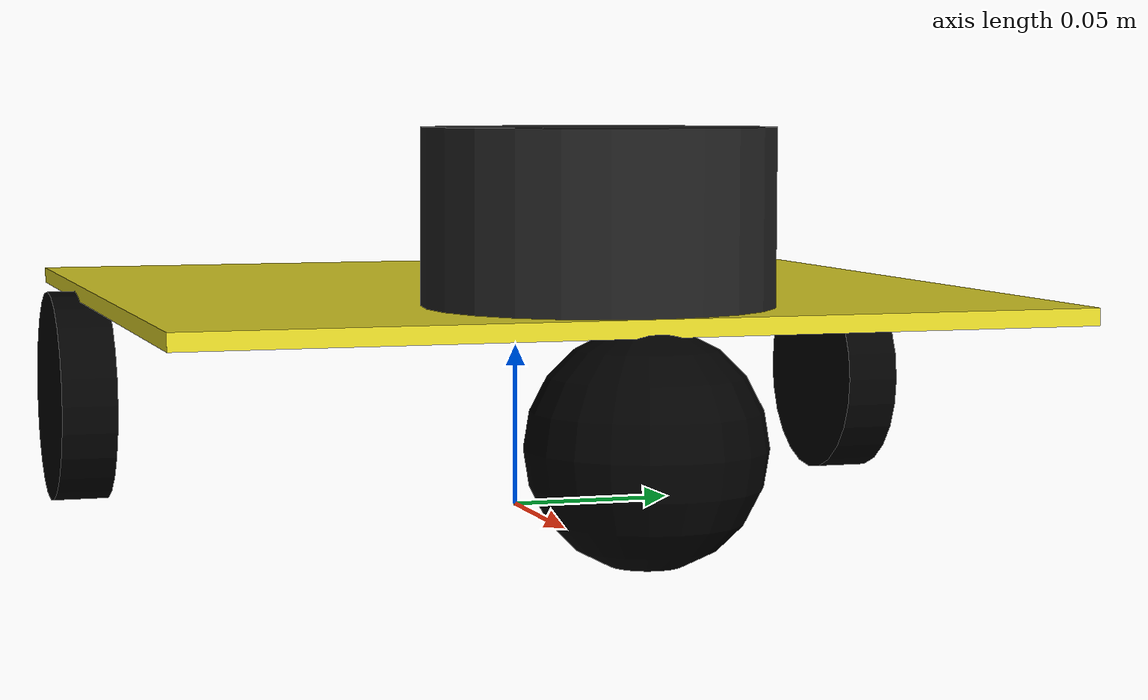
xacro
<?xml version="1.0"?>
<robot name="clean_car" xmlns:xacro="http://www.ros.org/wiki/xacro">

	<xacro:include filename="$(find clean_car_description)/urdf/clean_car_body.xacro" />
	<xacro:include filename="$(find clean_car_description)/urdf/rplidar.xacro" />
	<xacro:include filename="$(find clean_car_description)/urdf/imu.xacro" />
	<xacro:property name="rplidar_offset_x" value="0.08" />
	<xacro:property name="rplidar_offset_y" value="0" />
	<xacro:property name="rplidar_offset_z" value="0.0605" />

	<xacro:property name="imu_offset_x" value="0.0" />
	<xacro:property name="imu_offset_y" value="0.0" />
	<xacro:property name="imu_offset_z" value="0.0405" />

	<clean_car_body/>

	<!-- rplidar -->
	<joint name="rplidar_joint" type="fixed">
		<origin xyz="${rplidar_offset_x} ${rplidar_offset_y} ${rplidar_offset_z}" rpy="0 0 0" />
		<parent link="base_link"/>
		<child link="velodyne"/>
	</joint>
	<xacro:rplidar prefix="velodyne"/>

	<joint name="imu_joint" type="fixed">
		<origin xyz="${imu_offset_x} ${imu_offset_y} ${imu_offset_z}" rpy="0 0 0" />
		<parent link="base_link"/>
	<child link="imu_link"/>
	</joint>
	<xacro:imu prefix="imu"/>

</robot>

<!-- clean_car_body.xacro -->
<robot name="clean_car" xmlns:xacro="http://www.ros.org/wiki/xacro">

    <!-- Defining the colors used in this robot -->
    <material name="Black">
        <color rgba="0 0 0 1"/>
    </material>

    <material name="White">
        <color rgba="1 1 1 1"/>
    </material>

    <material name="Blue">
        <color rgba="0 0 1 1"/>
    </material>

    <material name="Red">
        <color rgba="1 0 0 1"/>
    </material>

    <!-- PROPERTY LIST -->
    <!--All units in m-kg-s-radians unit system -->
    <xacro:property name="M_PI" value="3.1415926535897931" />

    <!-- Main body length, width, height and mass -->
    <xacro:property name="base_mass"        value="0.5" />
    <xacro:property name="base_link_w" value="0.26"/>
    <xacro:property name="base_link_h" value="0.005"/>
    <xacro:property name="base_link_d" value="0.26"/>
    <xacro:property name="base_link_radius" value="0.13"/>
    <xacro:property name="motor_x" value="-0.05"/>

    <!-- Caster radius and mass -->
    <xacro:property name="caster_radius"          value="0.033" />
    <xacro:property name="caster_mass"            value="0.01" />
    <xacro:property name="caster_joint_origin_x"  value="-0.12" />

    <!-- Wheel radius, height and mass -->
    <xacro:property name="wheel_radius" value="0.033" />
    <xacro:property name="wheel_height" value="0.017" />
    <xacro:property name="wheel_mass"   value="0.1" />

    <!-- Macro for inertia matrix -->
    <xacro:macro name="sphere_inertial_matrix" params="m r">
        <inertial>
            <mass value="${m}" />
            <inertia ixx="${2*m*r*r/5}" ixy="0" ixz="0"
                iyy="${2*m*r*r/5}" iyz="0"
                izz="${2*m*r*r/5}" />
        </inertial>
    </xacro:macro>

    <xacro:macro name="cylinder_inertial_matrix" params="m r h">
        <inertial>
            <mass value="${m}" />
            <inertia ixx="${m*(3*r*r+h*h)/12}" ixy = "0" ixz = "0"
                iyy="${m*(3*r*r+h*h)/12}" iyz = "0"
                izz="${m*r*r/2}" />
        </inertial>
    </xacro:macro>

    <xacro:macro name="box_inertial_matrix" params="m w h d">
        <inertial>
            <mass value="${m}" />
            <inertia ixx="${m*(h*h+d*d)/12}" ixy = "0" ixz = "0"
                iyy="${m*(w*w+d*d)/12}" iyz = "0"
                izz="${m*(w*w+h*h)/12}" />
        </inertial>
    </xacro:macro>

    <!-- Macro for wheel joint -->
    <xacro:macro name="wheel" params="lr translateY">
        <!-- lr: left, right -->
        <link name="wheel_${lr}_link">
            <visual>
                <origin xyz="0 0 0" rpy="${M_PI/2} 0  0 " />
                <geometry>
                    <cylinder length="${wheel_height}" radius="${wheel_radius}" />
                </geometry>
                <material name="Black" />
            </visual>
            <collision>
                <origin xyz="0 0 0" rpy="${M_PI/2} 0 0 " />
                <geometry>
                    <cylinder length="${wheel_height}" radius="${wheel_radius}" />
                </geometry>
            </collision>
            <cylinder_inertial_matrix  m="${wheel_mass}" r="${wheel_radius}" h="${wheel_height}" />
        </link>

        <gazebo reference="wheel_${lr}_link">
            <material>Gazebo/Black</material>
        </gazebo>

        <joint name="base_to_wheel_${lr}_joint" type="continuous">
            <parent link="base_link"/>
            <child link="wheel_${lr}_link"/>
            <origin xyz="${motor_x} ${translateY * base_link_radius} 0" rpy="0 0 0" />
            <axis xyz="0 1 0" rpy="0  0" />
        </joint>

        <!-- Transmission is important to link the joints and the controller -->
        <transmission name="wheel_${lr}_joint_trans">
            <type>transmission_interface/SimpleTransmission</type>
            <joint name="base_to_wheel_${lr}_joint" />
            <actuator name="wheel_${lr}_joint_motor">
                <hardwareInterface>VelocityJointInterface</hardwareInterface>
                <mechanicalReduction>1</mechanicalReduction>
            </actuator>
        </transmission>
    </xacro:macro>

    <!-- Macro for caster joint -->
    <xacro:macro name="caster" params="fb translateX">
        <!-- fb: front, back -->
        <link name="${fb}_caster_link">
            <visual>
                <origin xyz="0 0 0 " rpy="0 0 0" />
                <geometry>
                    <sphere radius="${caster_radius}" />
                </geometry>
                <material name="Black" />
            </visual>
            <collision>
                <geometry>
                    <sphere radius="${caster_radius}" />
                </geometry>
                <origin xyz="0 0 0 " rpy="0 0 0" />
            </collision>
            <sphere_inertial_matrix  m="${caster_mass}" r="${caster_radius}" />
        </link>

        <gazebo reference="${fb}_caster_link">
            <material>Gazebo/Black</material>
        </gazebo>

        <joint name="base_to_${fb}_caster_joint" type="fixed">
            <parent link="base_link"/>
            <child link="${fb}_caster_link"/>
            <origin xyz="${translateX*caster_joint_origin_x} 0 0" rpy="0 0 0"/>
        </joint>
    </xacro:macro>

    <!-- BASE-FOOTPRINT -->
    <!-- base_footprint is a fictitious link(frame) that is on the ground right below base_link origin -->
    <xacro:macro name="clean_car_body">
        <link name="base_footprint">
            <visual>
                <origin xyz="0 0 0" rpy="0 0 0" />
                <geometry>
                    <box size="0.001 0.001 0.001" />
                </geometry>
            </visual>
        </link>

        <joint name="base_footprint_joint" type="fixed">
            <origin xyz="0 0 ${wheel_radius}" rpy="0 0 0" />
            <parent link="base_footprint"/>
            <child link="base_link" />
        </joint>

        <!-- BASE-LINK -->
        <!--Actual body/chassis of the robot-->
        <link name="base_link">
            <box_inertial_matrix  m="${base_mass}" w="${base_link_w}" h="${base_link_h}" d= "${base_link_d}" />
            <visual>
                <origin xyz=" 0 0 ${wheel_radius}" rpy="0 0 0" />
                <geometry>
                    <box size="${base_link_w} ${base_link_d} ${base_link_h}" />
                </geometry>
                <material name="yellow" />
            </visual>

            <collision>
                <origin xyz="0 0 ${2 * base_link_radius}" rpy="0 0 0" />
                <geometry>
                    <box size="${base_link_w} ${base_link_d} ${base_link_h}" />
                </geometry>
            </collision>
        </link>
        <gazebo reference="base_link">
            <material>Gazebo/Blue</material>
        </gazebo>

        <!-- Wheel Definitions -->
        <wheel lr="right"  translateY="1" />
        <wheel lr="left"  translateY="-1" />

        <!-- Casters Definitions -->
        <caster fb="front"  translateX="-1" />

        <!-- controller -->
        <gazebo>
            <plugin name="differential_drive_controller" filename="libgazebo_ros_diff_drive.so">
                <rosDebugLevel>Debug</rosDebugLevel>
                <publishWheelTF>True</publishWheelTF>
                <robotNamespace>/</robotNamespace>
                <publishTf>1</publishTf>
                <publishWheelJointState>true</publishWheelJointState>
                <alwaysOn>true</alwaysOn>
                <updateRate>100.0</updateRate>
                <legacyMode>true</legacyMode>
                <leftJoint>base_to_wheel_right_joint</leftJoint>
                <rightJoint>base_to_wheel_left_joint</rightJoint>
                <wheelSeparation>${base_link_w*2}</wheelSeparation>
                <wheelDiameter>${2*wheel_radius}</wheelDiameter>
                <publishOdomTF>false</publishOdomTF>
                <broadcastTF>1</broadcastTF>
                <wheelTorque>30</wheelTorque>
                <wheelAcceleration>1.8</wheelAcceleration>
                <commandTopic>cmd_vel</commandTopic>
                <odometryFrame>odom</odometryFrame>
                <odometryTopic>odom</odometryTopic>
                <robotBaseFrame>base_footprint</robotBaseFrame>
            </plugin>
        </gazebo>

    </xacro:macro>
</robot>

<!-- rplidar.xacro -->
<robot xmlns:xacro="http://www.ros.org/wiki/xacro" name="velodyne">

    <xacro:macro name="rplidar" params="prefix:=laser">
        <!-- Create laser reference frame -->
        <link name="${prefix}">
            <inertial>
                <mass value="0.1" />
                <origin xyz="0 0 0" />
                <inertia ixx="0.01" ixy="0.0" ixz="0.0"
                         iyy="0.01" iyz="0.0"
                         izz="0.01" />
            </inertial>

            <visual>
                <origin xyz=" 0 0 0 " rpy="0 0 0" />
                <geometry>
                    <cylinder length="0.05" radius="0.05"/>
                </geometry>
                <material name="black"/>
            </visual>

            <collision>
                <origin xyz="0.0 0.0 0.0" rpy="0 0 0" />
                <geometry>
                    <cylinder length="0.06" radius="0.05"/>
                </geometry>
            </collision>
        </link>
        <gazebo reference="${prefix}">
            <material>Gazebo/<color rgba="1.0 0.0 0.0 0.0"/>
            </material>
        </gazebo>

        <gazebo reference="${prefix}">
            <sensor type="ray" name="rplidar">
                <pose>0 0 0 0 0 0</pose>
                <visualize>false</visualize>
                <update_rate>30</update_rate>
                <ray>
                    <scan>
                      <horizontal>
                        <samples>360</samples>
                        <resolution>1</resolution>
                        <min_angle>-3</min_angle>
                        <max_angle>3</max_angle>
                      </horizontal>
                    </scan>
                    <range>
                      <min>0.10</min>
                      <max>6.0</max>
                      <resolution>0.01</resolution>
                    </range>
                    <noise>
                      <type>gaussian</type>
                      <mean>0.0</mean>
                      <stddev>0.01</stddev>
                    </noise>
                </ray>
                <plugin name="gazebo_rplidar" filename="libgazebo_ros_laser.so">
                    <topicName>/scan</topicName>
                    <frameName>laser_link</frameName>
                </plugin>
            </sensor>
        </gazebo>

    </xacro:macro>
</robot>

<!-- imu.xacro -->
<robot xmlns:xacro="http://www.ros.org/wiki/xacro" name="imu">

    <xacro:macro name="imu" params="prefix:=imu">

        <link name="${prefix}_link">

            <visual>
                <origin xyz=" 0 0 0 " rpy="0 0 0" />
                <geometry>
                    <box size="0.01 0.01 0.01"/>
                </geometry>
                <material name="black"/>
            </visual>

        </link>
        <gazebo reference="${prefix}_link">
            <material>Gazebo/<color rgba="0.0 0.0 1.0 0.0"/>
            </material>
        </gazebo>

        <gazebo reference="${prefix}_link">
            <gravity>true</gravity>
            <sensor name="imu_sensor" type="imu">
            <always_on>true</always_on>
            <update_rate>100</update_rate>
            <visualize>true</visualize>
            <topic>__default_topic__</topic>
            <plugin filename="libgazebo_ros_imu_sensor.so" name="imu_plugin">
                <topicName>imu/data</topicName>
                <bodyName>imu_link</bodyName>
                <updateRateHZ>10.0</updateRateHZ>
                <gaussianNoise>0.0</gaussianNoise>
                <xyzOffset>0 0 0</xyzOffset>
                <rpyOffset>0 0 0</rpyOffset>
                <frameName>imu_link</frameName>
                <initialOrientationAsReference>false</initialOrientationAsReference>
            </plugin>
            <pose>0 0 0 0 0 0</pose>
            </sensor>
        </gazebo>

    </xacro:macro>
</robot>
